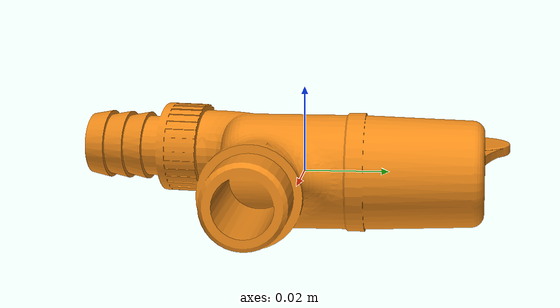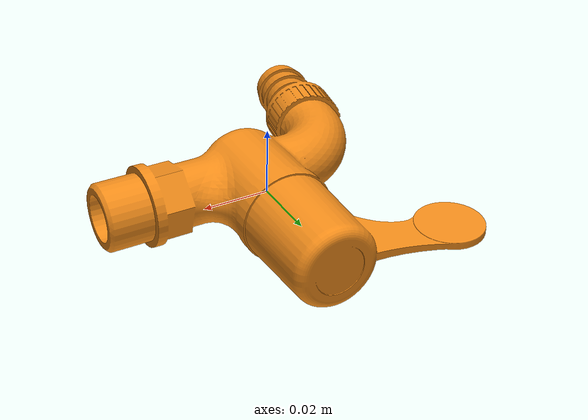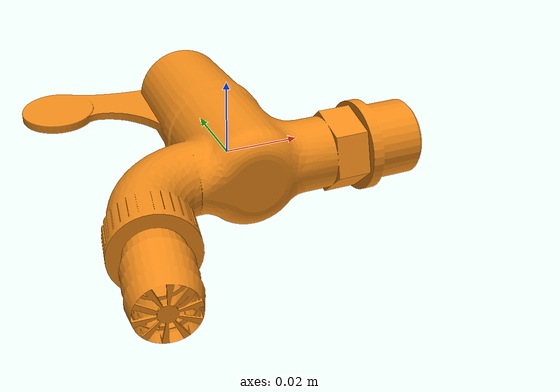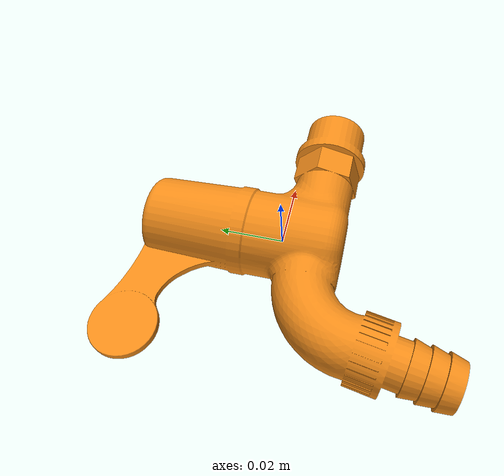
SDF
<?xml version="1.0" ?>

<sdf version="1.5">
  <model name="water tap">
    <static>false</static>
    <link name="bowl_link">
      <collision name="collision">
        <geometry>
      	  <box>
            <size> 0.09466 0.10685 0.028</size>
          </box>
        </geometry>
		<surface>
			<friction>
				<ode>
					<mu>0.98</mu>
					<mu2>0.98</mu2>
				</ode>
			</friction>
		</surface>
      </collision>
      <visual name="visual">
        <geometry>
          <mesh>
            <uri>model://water_tap/meshes/water_tap.dae</uri>
          </mesh>
        </geometry>
        <material>
		    <script>
		        <uri>file://media/materials/scripts/gazebo.material</uri>
		        <name>Gazebo/Orange</name>
		    </script>
        </material>
      </visual>
	  <inertial>
		<pose>0.0 0.0 0.0 0.0 0.0 0.0</pose>
        <mass>0.2</mass>
		<inertia>
			<ixx>0.000203348708333</ixx>
			<iyy>0.000162408593333</iyy>
			<izz>0.000339623968333</izz>
			<ixy>0.0</ixy>
			<ixz>0.0</ixz>
			<iyz>0.0</iyz>
		</inertia>
	  </inertial>
	</link>

  </model>
</sdf>
